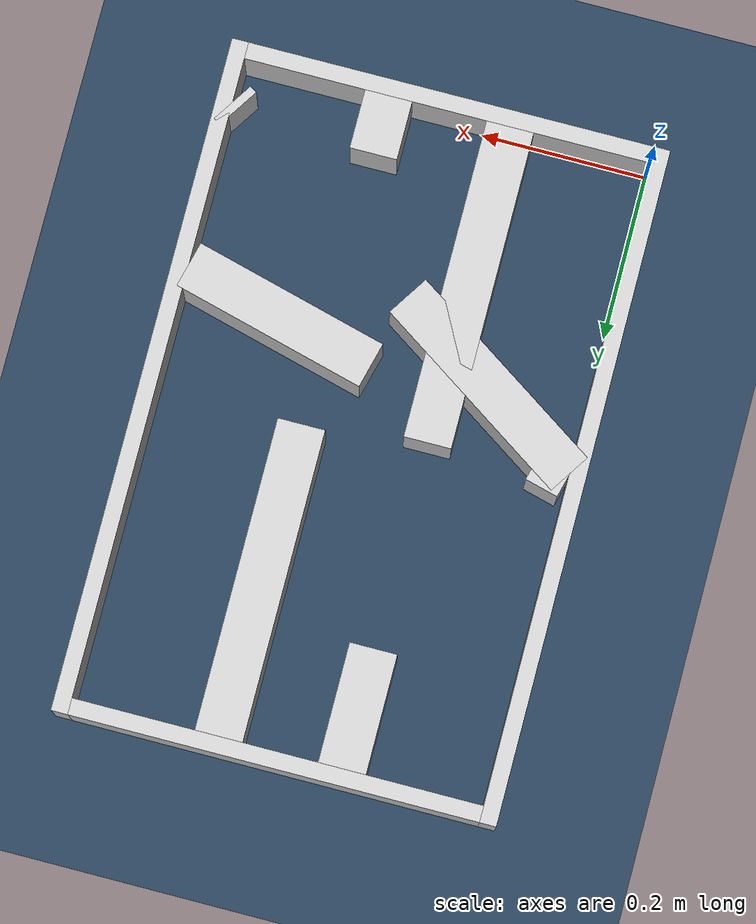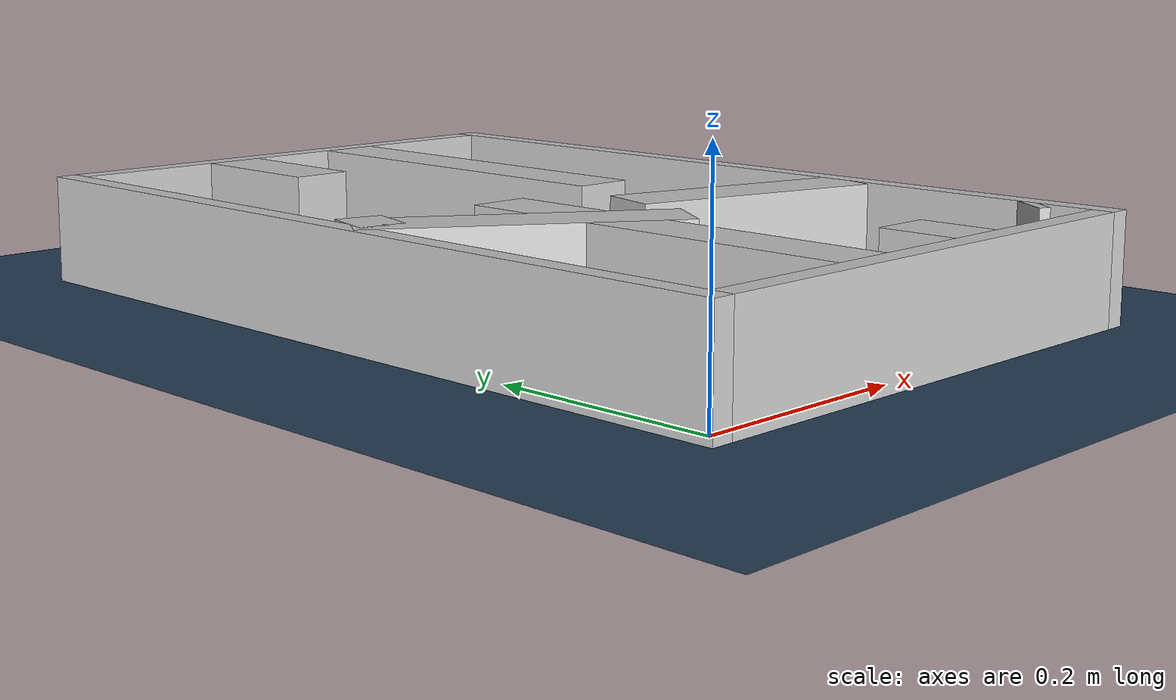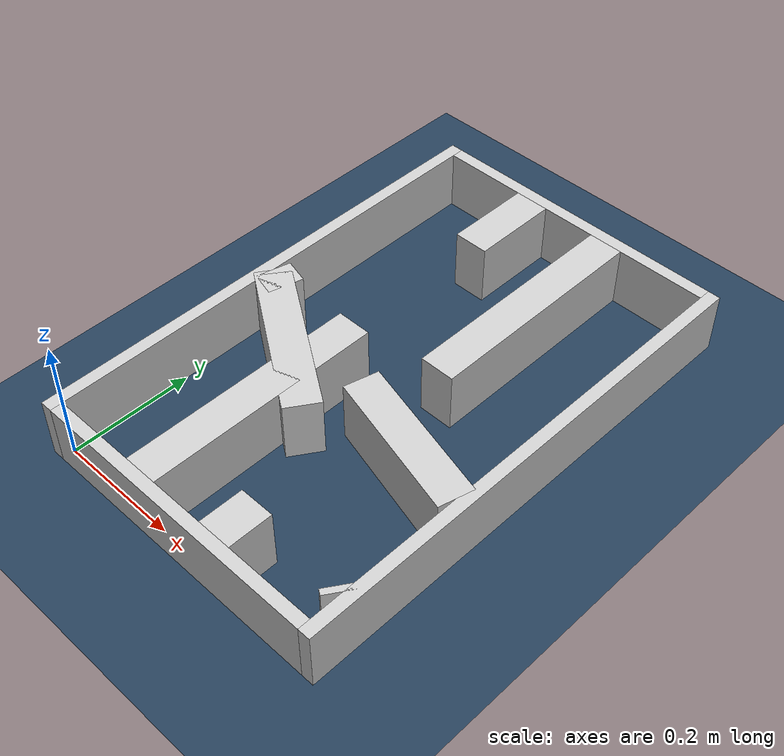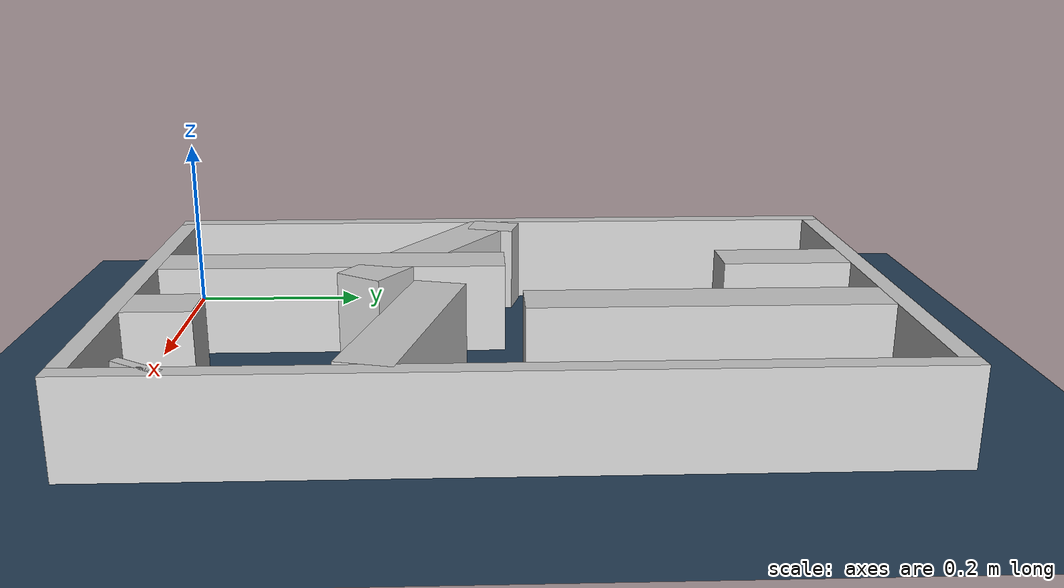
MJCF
<?xml version="1.0" ?>
<mujoco model="generated_real_template">
  <compiler angle="degree"/>
  <option timestep="0.002" integrator="implicitfast" iterations="100" cone="elliptic"/>
  <default>
    <geom density="1"/>
  </default>
  <asset>
    <texture builtin="gradient" height="3072" rgb1="0.3 0.5 0.7" rgb2="0 0 0" type="skybox" width="512"/>
    <texture builtin="checker" height="300" mark="edge" markrgb="0.8 0.8 0.8" name="groundplane" rgb1="0.2 0.3 0.4" rgb2="0.1 0.2 0.3" type="2d" width="300"/>
    <material name="groundplane" reflectance="0.2" texrepeat="5 5" texture="groundplane" texuniform="true"/>
  </asset>
  <worldbody>
    <light dir="0 0 -1" directional="true" pos="0 0 1.5"/>
    <geom name="floor" type="plane" condim="4" friction="0.5 0.005 0.001" material="groundplane" size="0 0 0.05"/>
    <body name="walls">
      <geom name="wall_boundary_left" type="box" condim="4" friction="1.0 0.005 0.0001" rgba="0.8 0.8 0.8 1" pos="-0.010000 0.387500 0.050000" euler="0 0 0.000000" size="0.010000 0.407500 0.050000"/>
      <geom name="wall_boundary_right" type="box" condim="4" friction="1.0 0.005 0.0001" rgba="0.8 0.8 0.8 1" pos="0.500000 0.387500 0.050000" euler="0 0 0.000000" size="0.010000 0.407500 0.050000"/>
      <geom name="wall_boundary_bottom" type="box" condim="4" friction="1.0 0.005 0.0001" rgba="0.8 0.8 0.8 1" pos="0.245000 -0.010000 0.050000" euler="0 0 0.000000" size="0.245000 0.010000 0.050000"/>
      <geom name="wall_boundary_top" type="box" condim="4" friction="1.0 0.005 0.0001" rgba="0.8 0.8 0.8 1" pos="0.245000 0.785000 0.050000" euler="0 0 0.000000" size="0.245000 0.010000 0.050000"/>
      <geom name="wall_inner_1_1" type="box" condim="4" friction="1.0 0.005 0.0001" rgba="0.8 0.8 0.8 1" pos="0.168338 0.192355 0.050000" euler="0 0 90.000000" size="0.192355 0.028500 0.050000"/>
      <geom name="wall_inner_1_2" type="box" condim="4" friction="1.0 0.005 0.0001" rgba="0.8 0.8 0.8 1" pos="0.168338 0.703371 0.050000" euler="0 0 90.000000" size="0.071629 0.028500 0.050000"/>
      <geom name="wall_inner_2_1" type="box" condim="4" friction="1.0 0.005 0.0001" rgba="0.8 0.8 0.8 1" pos="0.116918 0.301057 0.050000" euler="0 0 -33.501350" size="0.140211 0.028500 0.050000"/>
      <geom name="wall_inner_2_2" type="box" condim="4" friction="1.0 0.005 0.0001" rgba="0.8 0.8 0.8 1" pos="0.485887 0.056829 0.050000" euler="0 0 -33.501350" size="0.004933 0.028500 0.050000"/>
      <geom name="wall_inner_3_1" type="box" condim="4" friction="1.0 0.005 0.0001" rgba="0.8 0.8 0.8 1" pos="0.315163 0.035679 0.050000" euler="0 0 90.000000" size="0.035679 0.028500 0.050000"/>
      <geom name="wall_inner_3_2" type="box" condim="4" friction="1.0 0.005 0.0001" rgba="0.8 0.8 0.8 1" pos="0.315163 0.587760 0.050000" euler="0 0 90.000000" size="0.187240 0.028500 0.050000"/>
      <geom name="wall_inner_4_1" type="box" condim="4" friction="1.0 0.005 0.0001" rgba="0.8 0.8 0.8 1" pos="0.020087 0.374789 0.050000" euler="0 0 -14.625719" size="0.020759 0.028500 0.050000"/>
      <geom name="wall_inner_4_2" type="box" condim="4" friction="1.0 0.005 0.0001" rgba="0.8 0.8 0.8 1" pos="0.372262 0.282886 0.050000" euler="0 0 -14.625719" size="0.121681 0.028500 0.050000"/>
    </body>
  </worldbody>
</mujoco>
